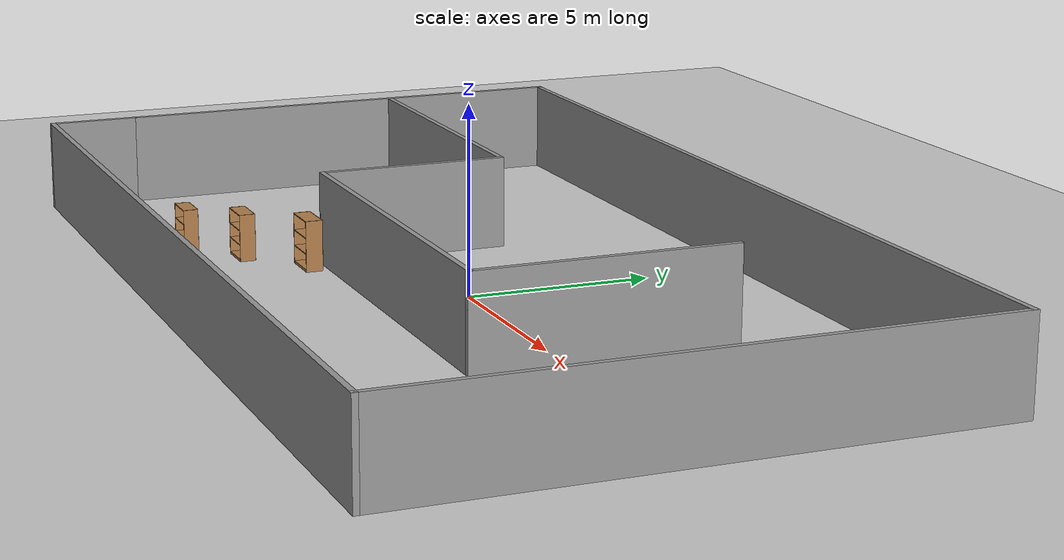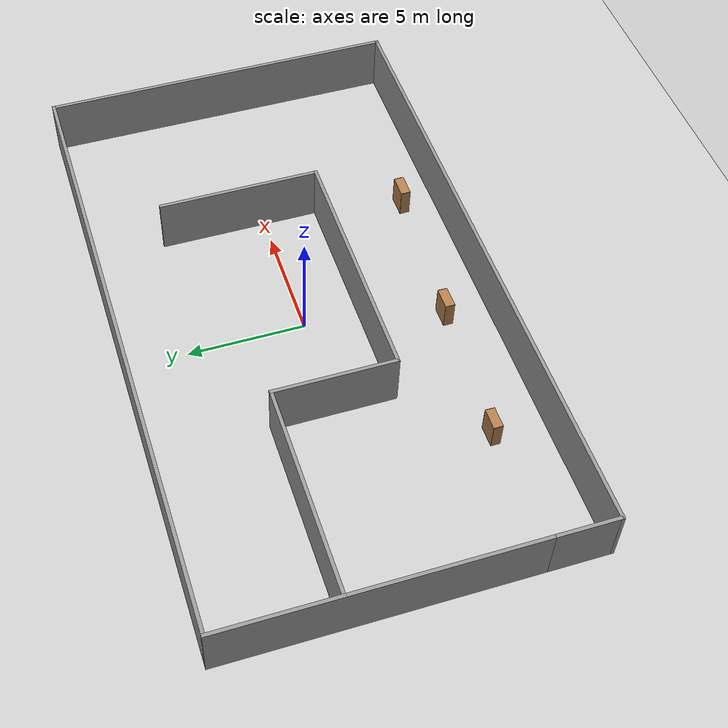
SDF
<sdf version="1.7">
 <world name="default">
  <light name="sun" type="directional">
   <pose>0 0 10 0 -0 0</pose>
   <diffuse>0.8 0.8 0.8 1</diffuse>
   <specular>0.2 0.2 0.2 1</specular>
   <attenuation>
    <range>1000</range>
    <constant>0.9</constant>
    <linear>0.01</linear>
    <quadratic>0.001</quadratic>
   </attenuation>
   <direction>-0.5 0.1 -0.9</direction>
   <spot><inner_angle>0</inner_angle><outer_angle>0</outer_angle><falloff>0</falloff></spot>
  </light>
  <model name="ground_plane">
   <static>1</static>
   <link name="link">
    <collision name="collision">
     <geometry><plane><normal>0 0 1</normal><size>100 100</size></plane></geometry>
     <surface><friction><ode><mu>100</mu><mu2>50</mu2></ode></friction></surface>
    </collision>
    <visual name="visual">
     <cast_shadows>0</cast_shadows>
     <geometry><plane><normal>0 0 1</normal><size>100 100</size></plane></geometry>
     <material>
      <script><uri>file://media/materials/scripts/gazebo.material</uri><name>Gazebo/Grey</name></script>
     </material>
    </visual>
   </link>
  </model>
  <gravity>0 0 -9.8</gravity>
  <magnetic_field>6e-06 2.3e-05 -4.2e-05</magnetic_field>
  <atmosphere type="adiabatic"/>
  <physics type="ode">
   <max_step_size>0.001</max_step_size>
   <real_time_factor>1</real_time_factor>
   <real_time_update_rate>1000</real_time_update_rate>
  </physics>
  <scene><ambient>0.4 0.4 0.4 1</ambient><background>0.7 0.7 0.7 1</background><shadows>1</shadows></scene>
  <spherical_coordinates>
   <surface_model>EARTH_WGS84</surface_model>
   <latitude_deg>0</latitude_deg>
   <longitude_deg>0</longitude_deg>
   <elevation>0</elevation>
   <heading_deg>0</heading_deg>
  </spherical_coordinates>
  <model name="building0">
   <link name="Wall_10">
    <collision name="Wall_10_Collision">
     <geometry><box><size>9 0.15 2.5</size></box></geometry>
     <pose>0 0 1.25 0 -0 0</pose>
    </collision>
    <visual name="Wall_10_visual">
     <pose>0 0 1.25 0 -0 0</pose>
     <geometry><box><size>9 0.15 2.5</size></box></geometry>
     <material>
      <script><uri>file://media/materials/scripts/gazebo.material</uri><name>Gazebo/Grey</name></script>
      <ambient>1 1 1 1</ambient>
     </material>
     <meta><layer>0</layer></meta>
    </visual>
    <pose>-8.93882 2.71728 0 0 -0 0</pose>
   </link>
   <link name="Wall_11">
    <collision name="Wall_11_Collision">
     <geometry><box><size>5.25 0.15 2.5</size></box></geometry>
     <pose>0 0 1.25 0 -0 0</pose>
    </collision>
    <visual name="Wall_11_visual">
     <pose>0 0 1.25 0 -0 0</pose>
     <geometry><box><size>5.25 0.15 2.5</size></box></geometry>
     <material>
      <script><uri>file://media/materials/scripts/gazebo.material</uri><name>Gazebo/Grey</name></script>
      <ambient>1 1 1 1</ambient>
     </material>
     <meta><layer>0</layer></meta>
    </visual>
    <pose>-4.51382 0.167279 0 0 -0 -1.5708</pose>
   </link>
   <link name="Wall_12">
    <collision name="Wall_12_Collision">
     <geometry><box><size>10.75 0.15 2.5</size></box></geometry>
     <pose>0 0 1.25 0 -0 0</pose>
    </collision>
    <visual name="Wall_12_visual">
     <pose>0 0 1.25 0 -0 0</pose>
     <geometry><box><size>10.75 0.15 2.5</size></box></geometry>
     <material>
      <script><uri>file://media/materials/scripts/gazebo.material</uri><name>Gazebo/Grey</name></script>
      <ambient>1 1 1 1</ambient>
     </material>
     <meta><layer>0</layer></meta>
    </visual>
    <pose>0.786181 -2.38272 0 0 -0 0</pose>
   </link>
   <link name="Wall_13">
    <collision name="Wall_13_Collision">
     <geometry><box><size>7 0.15 2.5</size></box></geometry>
     <pose>0 0 1.25 0 -0 0</pose>
    </collision>
    <visual name="Wall_13_visual">
     <pose>0 0 1.25 0 -0 0</pose>
     <geometry><box><size>7 0.15 2.5</size></box></geometry>
     <material>
      <script><uri>file://media/materials/scripts/gazebo.material</uri><name>Gazebo/Grey</name></script>
      <ambient>1 1 1 1</ambient>
     </material>
     <meta><layer>0</layer></meta>
    </visual>
    <pose>6.08618 1.04228 0 0 -0 1.5708</pose>
   </link>
   <link name="Wall_4">
    <collision name="Wall_4_Collision">
     <geometry><box><size>13 0.15 2.5</size></box></geometry>
     <pose>0 0 1.25 0 -0 0</pose>
    </collision>
    <visual name="Wall_4_visual">
     <pose>0 0 1.25 0 -0 0</pose>
     <geometry><box><size>13 0.15 2.5</size></box></geometry>
     <material>
      <script><uri>file://media/materials/scripts/gazebo.material</uri><name>Gazebo/Grey</name></script>
      <ambient>1 1 1 1</ambient>
     </material>
     <meta><layer>0</layer></meta>
    </visual>
    <pose>-13.425 1.25 0 0 -0 1.5708</pose>
   </link>
   <link name="Wall_5">
    <collision name="Wall_5_Collision">
     <geometry><box><size>27 0.15 2.5</size></box></geometry>
     <pose>0 0 1.25 0 -0 0</pose>
    </collision>
    <visual name="Wall_5_visual">
     <pose>0 0 1.25 0 -0 0</pose>
     <geometry><box><size>27 0.15 2.5</size></box></geometry>
     <material>
      <script><uri>file://media/materials/scripts/gazebo.material</uri><name>Gazebo/Grey</name></script>
      <ambient>1 1 1 1</ambient>
     </material>
     <meta><layer>0</layer></meta>
    </visual>
    <pose>0 7.675 0 0 -0 0</pose>
   </link>
   <link name="Wall_6">
    <collision name="Wall_6_Collision">
     <geometry><box><size>15.5 0.15 2.5</size></box></geometry>
     <pose>0 0 1.25 0 -0 0</pose>
    </collision>
    <visual name="Wall_6_visual">
     <pose>0 0 1.25 0 -0 0</pose>
     <geometry><box><size>15.5 0.15 2.5</size></box></geometry>
     <material>
      <script><uri>file://media/materials/scripts/gazebo.material</uri><name>Gazebo/Grey</name></script>
      <ambient>1 1 1 1</ambient>
     </material>
     <meta><layer>0</layer></meta>
    </visual>
    <pose>13.425 0 0 0 -0 -1.5708</pose>
   </link>
   <link name="Wall_7">
    <collision name="Wall_7_Collision">
     <geometry><box><size>27 0.15 2.5</size></box></geometry>
     <pose>0 0 1.25 0 -0 0</pose>
    </collision>
    <visual name="Wall_7_visual">
     <pose>0 0 1.25 0 -0 0</pose>
     <geometry><box><size>27 0.15 2.5</size></box></geometry>
     <material>
      <script><uri>file://media/materials/scripts/gazebo.material</uri><name>Gazebo/Grey</name></script>
      <ambient>1 1 1 1</ambient>
     </material>
     <meta><layer>0</layer></meta>
    </visual>
    <pose>0 -7.675 0 0 -0 3.14159</pose>
   </link>
   <link name="Wall_8">
    <collision name="Wall_8_Collision">
     <geometry><box><size>2.65 0.15 2.5</size></box></geometry>
     <pose>0 0 1.25 0 -0 0</pose>
    </collision>
    <visual name="Wall_8_visual">
     <pose>0 0 1.25 0 -0 0</pose>
     <geometry><box><size>2.65 0.15 2.5</size></box></geometry>
     <material>
      <script><uri>file://media/materials/scripts/gazebo.material</uri><name>Gazebo/Grey</name></script>
      <ambient>1 1 1 1</ambient>
     </material>
     <meta><layer>0</layer></meta>
    </visual>
    <pose>-13.425 -6.425 0 0 -0 1.5708</pose>
   </link>
   <static>1</static>
  </model>
  <audio><device>default</device></audio>
  <model name="bookshelf">
   <static>1</static>
   <link name="link">
    <inertial><mass>1</mass></inertial>
    <collision name="back">
     <pose>0 0.005 0.6 0 -0 0</pose>
     <geometry><box><size>0.9 0.01 1.2</size></box></geometry>
    </collision>
    <visual name="visual1">
     <pose>0 0.005 0.6 0 -0 0</pose>
     <geometry><box><size>0.9 0.01 1.2</size></box></geometry>
     <material>
      <script><uri>file://media/materials/scripts/gazebo.material</uri><name>Gazebo/Wood</name></script>
     </material>
    </visual>
    <collision name="left_side">
     <pose>0.45 -0.195 0.6 0 -0 0</pose>
     <geometry><box><size>0.02 0.4 1.2</size></box></geometry>
    </collision>
    <visual name="visual2">
     <pose>0.45 -0.195 0.6 0 -0 0</pose>
     <geometry><box><size>0.02 0.4 1.2</size></box></geometry>
     <material>
      <script><uri>file://media/materials/scripts/gazebo.material</uri><name>Gazebo/Wood</name></script>
     </material>
    </visual>
    <collision name="right_side">
     <pose>-0.45 -0.195 0.6 0 -0 0</pose>
     <geometry><box><size>0.02 0.4 1.2</size></box></geometry>
    </collision>
    <visual name="visual3">
     <pose>-0.45 -0.195 0.6 0 -0 0</pose>
     <geometry><box><size>0.02 0.4 1.2</size></box></geometry>
     <material>
      <script><uri>file://media/materials/scripts/gazebo.material</uri><name>Gazebo/Wood</name></script>
     </material>
    </visual>
    <collision name="bottom">
     <pose>0 -0.195 0.03 0 -0 0</pose>
     <geometry><box><size>0.88 0.4 0.06</size></box></geometry>
    </collision>
    <visual name="visual4">
     <pose>0 -0.195 0.03 0 -0 0</pose>
     <geometry><box><size>0.88 0.4 0.06</size></box></geometry>
     <material>
      <script><uri>file://media/materials/scripts/gazebo.material</uri><name>Gazebo/Wood</name></script>
     </material>
    </visual>
    <collision name="top">
     <pose>0 -0.195 1.19 0 -0 0</pose>
     <geometry><box><size>0.88 0.4 0.02</size></box></geometry>
    </collision>
    <visual name="visual5">
     <pose>0 -0.195 1.19 0 -0 0</pose>
     <geometry><box><size>0.88 0.4 0.02</size></box></geometry>
     <material>
      <script><uri>file://media/materials/scripts/gazebo.material</uri><name>Gazebo/Wood</name></script>
     </material>
    </visual>
    <collision name="low_shelf">
     <pose>0 -0.195 0.43 0 -0 0</pose>
     <geometry><box><size>0.88 0.4 0.02</size></box></geometry>
    </collision>
    <visual name="visual6">
     <pose>0 -0.195 0.43 0 -0 0</pose>
     <geometry><box><size>0.88 0.4 0.02</size></box></geometry>
     <material>
      <script><uri>file://media/materials/scripts/gazebo.material</uri><name>Gazebo/Wood</name></script>
     </material>
    </visual>
    <collision name="high_shelf">
     <pose>0 -0.195 0.8 0 -0 0</pose>
     <geometry><box><size>0.88 0.4 0.02</size></box></geometry>
    </collision>
    <visual name="visual7">
     <pose>0 -0.195 0.8 0 -0 0</pose>
     <geometry><box><size>0.88 0.4 0.02</size></box></geometry>
     <material>
      <script><uri>file://media/materials/scripts/gazebo.material</uri><name>Gazebo/Wood</name></script>
     </material>
    </visual>
   </link>
   <pose>-7.34426 -5.18517 0 0 -0 0</pose>
  </model>
  <model name="bookshelf_clone">
   <static>1</static>
   <link name="link">
    <inertial><mass>1</mass></inertial>
    <collision name="back">
     <pose>0 0.005 0.6 0 -0 0</pose>
     <geometry><box><size>0.9 0.01 1.2</size></box></geometry>
    </collision>
    <visual name="visual1">
     <pose>0 0.005 0.6 0 -0 0</pose>
     <geometry><box><size>0.9 0.01 1.2</size></box></geometry>
     <material>
      <script><uri>file://media/materials/scripts/gazebo.material</uri><name>Gazebo/Wood</name></script>
     </material>
    </visual>
    <collision name="left_side">
     <pose>0.45 -0.195 0.6 0 -0 0</pose>
     <geometry><box><size>0.02 0.4 1.2</size></box></geometry>
    </collision>
    <visual name="visual2">
     <pose>0.45 -0.195 0.6 0 -0 0</pose>
     <geometry><box><size>0.02 0.4 1.2</size></box></geometry>
     <material>
      <script><uri>file://media/materials/scripts/gazebo.material</uri><name>Gazebo/Wood</name></script>
     </material>
    </visual>
    <collision name="right_side">
     <pose>-0.45 -0.195 0.6 0 -0 0</pose>
     <geometry><box><size>0.02 0.4 1.2</size></box></geometry>
    </collision>
    <visual name="visual3">
     <pose>-0.45 -0.195 0.6 0 -0 0</pose>
     <geometry><box><size>0.02 0.4 1.2</size></box></geometry>
     <material>
      <script><uri>file://media/materials/scripts/gazebo.material</uri><name>Gazebo/Wood</name></script>
     </material>
    </visual>
    <collision name="bottom">
     <pose>0 -0.195 0.03 0 -0 0</pose>
     <geometry><box><size>0.88 0.4 0.06</size></box></geometry>
    </collision>
    <visual name="visual4">
     <pose>0 -0.195 0.03 0 -0 0</pose>
     <geometry><box><size>0.88 0.4 0.06</size></box></geometry>
     <material>
      <script><uri>file://media/materials/scripts/gazebo.material</uri><name>Gazebo/Wood</name></script>
     </material>
    </visual>
    <collision name="top">
     <pose>0 -0.195 1.19 0 -0 0</pose>
     <geometry><box><size>0.88 0.4 0.02</size></box></geometry>
    </collision>
    <visual name="visual5">
     <pose>0 -0.195 1.19 0 -0 0</pose>
     <geometry><box><size>0.88 0.4 0.02</size></box></geometry>
     <material>
      <script><uri>file://media/materials/scripts/gazebo.material</uri><name>Gazebo/Wood</name></script>
     </material>
    </visual>
    <collision name="low_shelf">
     <pose>0 -0.195 0.43 0 -0 0</pose>
     <geometry><box><size>0.88 0.4 0.02</size></box></geometry>
    </collision>
    <visual name="visual6">
     <pose>0 -0.195 0.43 0 -0 0</pose>
     <geometry><box><size>0.88 0.4 0.02</size></box></geometry>
     <material>
      <script><uri>file://media/materials/scripts/gazebo.material</uri><name>Gazebo/Wood</name></script>
     </material>
    </visual>
    <collision name="high_shelf">
     <pose>0 -0.195 0.8 0 -0 0</pose>
     <geometry><box><size>0.88 0.4 0.02</size></box></geometry>
    </collision>
    <visual name="visual7">
     <pose>0 -0.195 0.8 0 -0 0</pose>
     <geometry><box><size>0.88 0.4 0.02</size></box></geometry>
     <material>
      <script><uri>file://media/materials/scripts/gazebo.material</uri><name>Gazebo/Wood</name></script>
     </material>
    </visual>
   </link>
   <pose>-2 -5.15277 1.1 0 -0 0</pose>
  </model>
  <model name="bookshelf_clone_0">
   <static>1</static>
   <link name="link">
    <inertial><mass>1</mass></inertial>
    <collision name="back">
     <pose>0 0.005 0.6 0 -0 0</pose>
     <geometry><box><size>0.9 0.01 1.2</size></box></geometry>
    </collision>
    <visual name="visual1">
     <pose>0 0.005 0.6 0 -0 0</pose>
     <geometry><box><size>0.9 0.01 1.2</size></box></geometry>
     <material>
      <script><uri>file://media/materials/scripts/gazebo.material</uri><name>Gazebo/Wood</name></script>
     </material>
    </visual>
    <collision name="left_side">
     <pose>0.45 -0.195 0.6 0 -0 0</pose>
     <geometry><box><size>0.02 0.4 1.2</size></box></geometry>
    </collision>
    <visual name="visual2">
     <pose>0.45 -0.195 0.6 0 -0 0</pose>
     <geometry><box><size>0.02 0.4 1.2</size></box></geometry>
     <material>
      <script><uri>file://media/materials/scripts/gazebo.material</uri><name>Gazebo/Wood</name></script>
     </material>
    </visual>
    <collision name="right_side">
     <pose>-0.45 -0.195 0.6 0 -0 0</pose>
     <geometry><box><size>0.02 0.4 1.2</size></box></geometry>
    </collision>
    <visual name="visual3">
     <pose>-0.45 -0.195 0.6 0 -0 0</pose>
     <geometry><box><size>0.02 0.4 1.2</size></box></geometry>
     <material>
      <script><uri>file://media/materials/scripts/gazebo.material</uri><name>Gazebo/Wood</name></script>
     </material>
    </visual>
    <collision name="bottom">
     <pose>0 -0.195 0.03 0 -0 0</pose>
     <geometry><box><size>0.88 0.4 0.06</size></box></geometry>
    </collision>
    <visual name="visual4">
     <pose>0 -0.195 0.03 0 -0 0</pose>
     <geometry><box><size>0.88 0.4 0.06</size></box></geometry>
     <material>
      <script><uri>file://media/materials/scripts/gazebo.material</uri><name>Gazebo/Wood</name></script>
     </material>
    </visual>
    <collision name="top">
     <pose>0 -0.195 1.19 0 -0 0</pose>
     <geometry><box><size>0.88 0.4 0.02</size></box></geometry>
    </collision>
    <visual name="visual5">
     <pose>0 -0.195 1.19 0 -0 0</pose>
     <geometry><box><size>0.88 0.4 0.02</size></box></geometry>
     <material>
      <script><uri>file://media/materials/scripts/gazebo.material</uri><name>Gazebo/Wood</name></script>
     </material>
    </visual>
    <collision name="low_shelf">
     <pose>0 -0.195 0.43 0 -0 0</pose>
     <geometry><box><size>0.88 0.4 0.02</size></box></geometry>
    </collision>
    <visual name="visual6">
     <pose>0 -0.195 0.43 0 -0 0</pose>
     <geometry><box><size>0.88 0.4 0.02</size></box></geometry>
     <material>
      <script><uri>file://media/materials/scripts/gazebo.material</uri><name>Gazebo/Wood</name></script>
     </material>
    </visual>
    <collision name="high_shelf">
     <pose>0 -0.195 0.8 0 -0 0</pose>
     <geometry><box><size>0.88 0.4 0.02</size></box></geometry>
    </collision>
    <visual name="visual7">
     <pose>0 -0.195 0.8 0 -0 0</pose>
     <geometry><box><size>0.88 0.4 0.02</size></box></geometry>
     <material>
      <script><uri>file://media/materials/scripts/gazebo.material</uri><name>Gazebo/Wood</name></script>
     </material>
    </visual>
   </link>
   <pose>3.40986 -5.14265 2.2 0 -0 0</pose>
  </model>
 </world>
</sdf>
